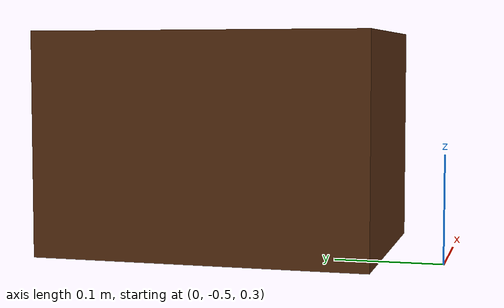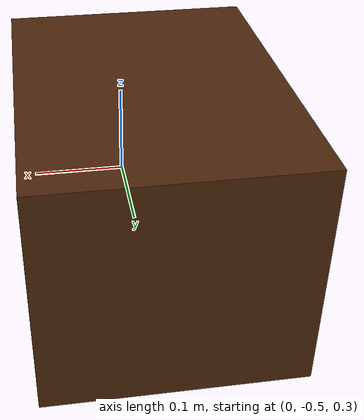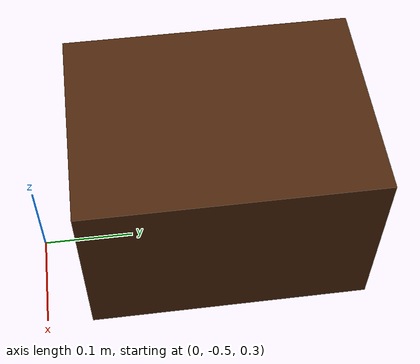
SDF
<?xml version="1.0" ?>
<sdf version="1.6">
  <model name="movable_box">
    <static>false</static>
    <link name="box_link">
      <inertial>
        <mass>2.0</mass>
      </inertial>

      <visual name="visual">
        <geometry>
          <box>
            <size>0.22 0.3 0.2</size>
          </box>
        </geometry>
        <material>
          <diffuse>0.3 0.15 0.05 1.0</diffuse>   <!-- Dark brown -->
          <specular>0.2 0.1 0.05 1.0</specular>
        </material>
      </visual>

      <collision name="collision">
        <geometry>
          <box>
            <size>0.22 0.3 0.2</size>
          </box>
        </geometry>
        <surface>
          <friction>
            <ode>
              <mu>0.8</mu>
              <mu2>0.8</mu2>
            </ode>
          </friction>
          <contact>
            <ode>
              <kp>0.1</kp>
              <kd>0.001</kd>
              <max_vel>0.01</max_vel>
            </ode>
          </contact>
          <bounce>
            <restitution_coefficient>0.0</restitution_coefficient>
            <threshold>0.0</threshold>
          </bounce>
        </surface>

        <!-- Enable soft hydroelastic contact (can be modified)-->
        <drake:proximity_properties>
          <drake:compliant_hydroelastic />
          <drake:hydroelastic_modulus>1e8</drake:hydroelastic_modulus>
        </drake:proximity_properties>
      </collision>

      <!-- Positioned on top of fixed box -->
      <pose>0.0 -0.3 0.41 0 0 0</pose>
    </link>
  </model>
</sdf>
